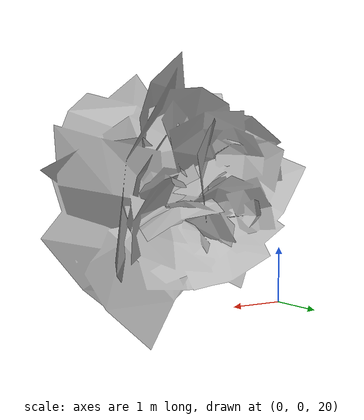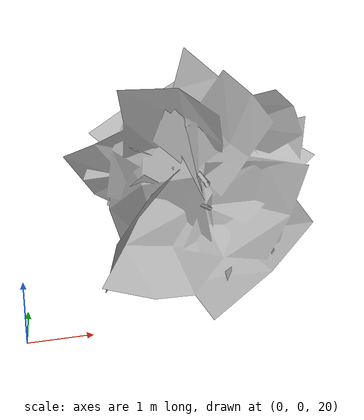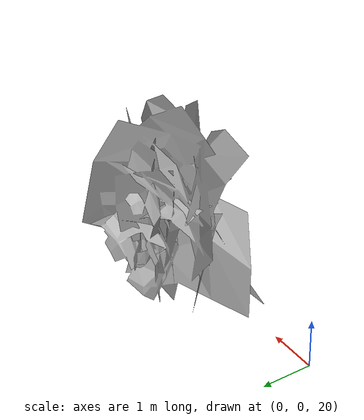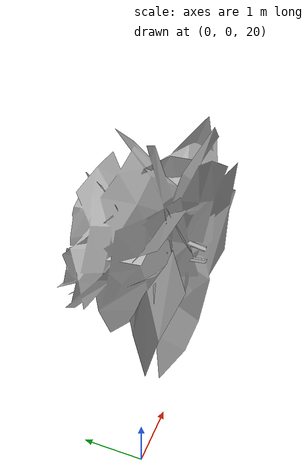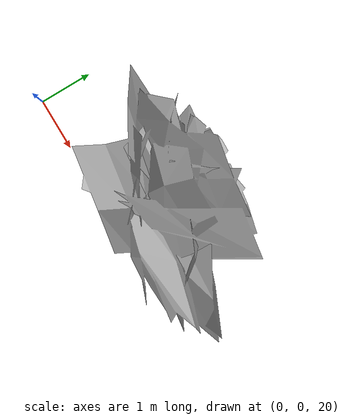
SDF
<?xml version="1.0" ?>
<sdf version="1.9">
  <model name="bush_05">
    <static>true</static>
    <link name="link">
      <collision name="collision">
        <pose>0 0 0.5 0 0 0</pose>
        <geometry>
          <box>
            <size>1.2 1.2 1.0</size>
          </box>
        </geometry>
      </collision>
      <visual name="visual">
        <geometry>
          <mesh>
            <uri>model://bush_05/meshes/Bush-05.obj</uri>
          </mesh>
        </geometry>
      </visual>
    </link>
  </model>
</sdf>
